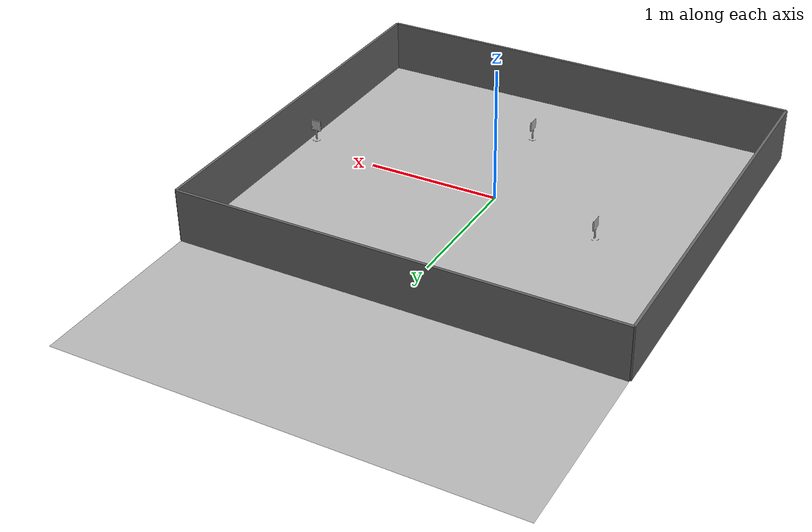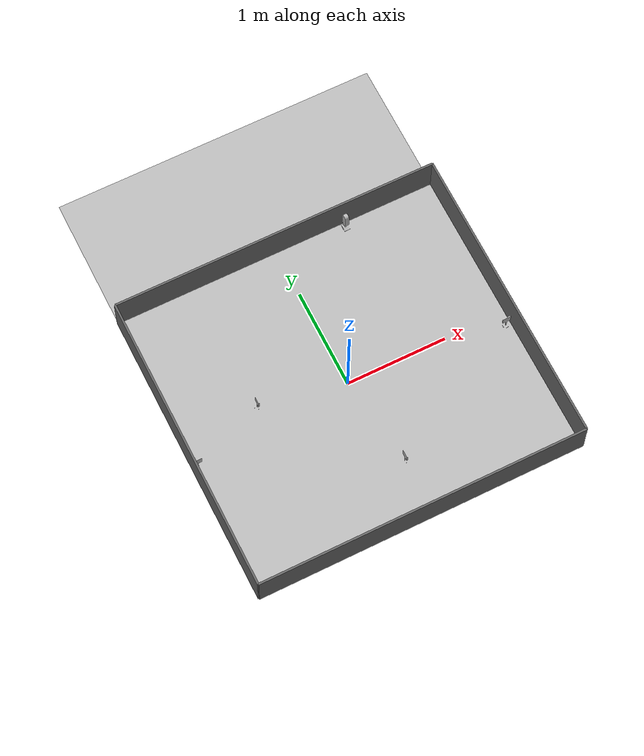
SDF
<?xml version="1.0"?>
<sdf version="1.6">
  <model name="parking_side_map">
    <static>true</static>
    <pose>0 0 0.005 0 0 0</pose>  <!-- Z축으로 5mm 띄움 -->
    <link name="link">
      <collision name="collision">
        <geometry>
          <box>
            <size>3.26 2.98 0.01</size>
          </box>
        </geometry>
        <surface>
          <friction>
            <ode>
              <mu>1.0</mu>
              <mu2>1.0</mu2>
            </ode>
          </friction>
        </surface>
      </collision>
      <visual name="visual">
        <pose>0 0 0 0 0 0</pose>
        <geometry>
          <mesh>
            <uri>model://parking_side_map/meshes/parking_side_map.obj</uri>
          </mesh>
        </geometry>
      </visual>

      <!-- North Wall (Y+) -->
      <collision name="wall_north_col">
        <pose>0 1.49 0.2 0 0 0</pose>
        <geometry><box><size>3.26 0.02 0.4</size></box></geometry>
      </collision>
      <visual name="wall_north_vis">
        <pose>0 1.49 0.2 0 0 0</pose>
        <geometry><box><size>3.26 0.02 0.4</size></box></geometry>
        <material>
          <ambient>0.3 0.3 0.3 1</ambient>
          <diffuse>0.4 0.4 0.4 1</diffuse>
        </material>
      </visual>

      <!-- South Wall (Y-) -->
      <collision name="wall_south_col">
        <pose>0 -1.49 0.2 0 0 0</pose>
        <geometry><box><size>3.26 0.02 0.4</size></box></geometry>
      </collision>
      <visual name="wall_south_vis">
        <pose>0 -1.49 0.2 0 0 0</pose>
        <geometry><box><size>3.26 0.02 0.4</size></box></geometry>
        <material>
          <ambient>0.3 0.3 0.3 1</ambient>
          <diffuse>0.4 0.4 0.4 1</diffuse>
        </material>
      </visual>

      <!-- East Wall (X+) -->
      <collision name="wall_east_col">
        <pose>1.63 0 0.2 0 0 0</pose>
        <geometry><box><size>0.02 2.98 0.4</size></box></geometry>
      </collision>
      <visual name="wall_east_vis">
        <pose>1.63 0 0.2 0 0 0</pose>
        <geometry><box><size>0.02 2.98 0.4</size></box></geometry>
        <material>
          <ambient>0.3 0.3 0.3 1</ambient>
          <diffuse>0.4 0.4 0.4 1</diffuse>
        </material>
      </visual>

      <!-- West Wall (X-) -->
      <collision name="wall_west_col">
        <pose>-1.63 0 0.2 0 0 0</pose>
        <geometry><box><size>0.02 2.98 0.4</size></box></geometry>
      </collision>
      <visual name="wall_west_vis">
        <pose>-1.63 0 0.2 0 0 0</pose>
        <geometry><box><size>0.02 2.98 0.4</size></box></geometry>
        <material>
          <ambient>0.3 0.3 0.3 1</ambient>
          <diffuse>0.4 0.4 0.4 1</diffuse>
        </material>
      </visual>
    </link>
  </model>
</sdf>
